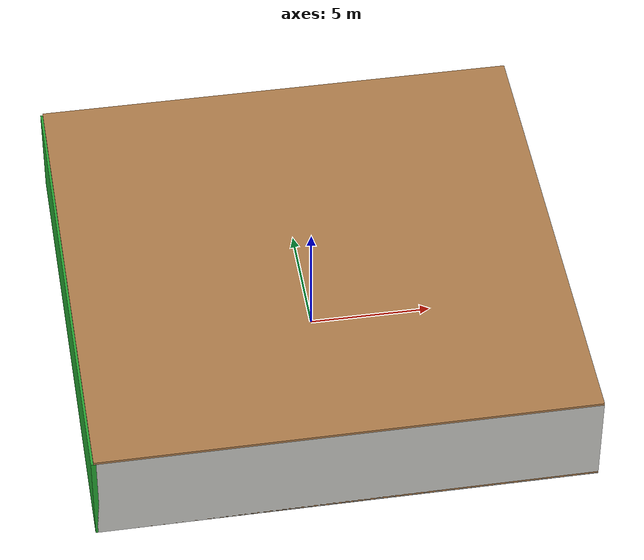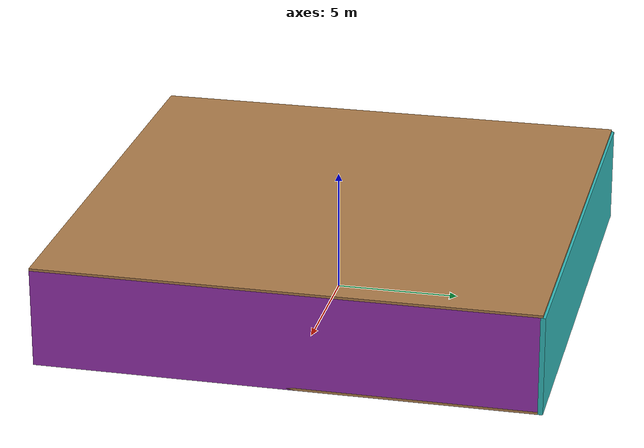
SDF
<sdf version="1.4">
 <world name="default">
  <physics type="ode">
   <max_step_size>0.001</max_step_size>
   <real_time_factor>1</real_time_factor>
   <real_time_update_rate>1000</real_time_update_rate>
   <gravity>0 0 -9.8</gravity>
  </physics>
  <scene><ambient>0.4 0.4 0.4 1</ambient><background>0.7 0.7 0.7 1</background><shadows>1</shadows></scene>
  <model name="Surrounding">
   <static>1</static>
   <link name="Ceiling">
    <collision name="Ceiling_Collision"><geometry><box><size>20 20 0.1</size></box></geometry></collision>
    <visual name="Ceiling_Visual">
     <geometry><box><size>20 20 0.1</size></box></geometry>
     <material>
      <script><uri>file://media/materials/scripts/gazebo.material</uri><name>Gazebo/WoodPallet</name></script>
     </material>
    </visual>
    <pose>0 0 4.05 0 0 0</pose>
   </link>
   <link name="Wall_South">
    <collision name="Wall_South_Collision">
     <geometry><box><size>20 0 4</size></box></geometry>
     <pose>0 0 2 0 -0 0</pose>
    </collision>
    <visual name="Wall_South_Visual">
     <pose>0 0 2 0 -0 0</pose>
     <geometry><box><size>20 0 4</size></box></geometry>
     <material>
      <script><uri>file://media/materials/scripts/gazebo.material</uri><name>Gazebo/CeilingTiled</name></script>
     </material>
    </visual>
    <velocity_decay><linear>0</linear><angular>0</angular></velocity_decay>
    <pose>0 -10 0 0 -0 0</pose>
   </link>
   <link name="Wall_East">
    <collision name="Wall_21_Collision">
     <geometry><box><size>20 0 4</size></box></geometry>
     <pose>0 0 2 0 -0 0</pose>
    </collision>
    <visual name="Wall_21_Visual">
     <pose>0 0 2 0 -0 0</pose>
     <geometry><box><size>20 0 4</size></box></geometry>
     <material>
      <script><uri>file://media/materials/scripts/gazebo.material</uri><name>Gazebo/Purple</name></script>
     </material>
    </visual>
    <velocity_decay><linear>0</linear><angular>0</angular></velocity_decay>
    <pose>10 0 0 0 -0 1.5708</pose>
   </link>
   <link name="Wall_North">
    <collision name="Wall_22_Collision">
     <geometry><box><size>20 0.2 4</size></box></geometry>
     <pose>0 0 2 0 -0 0</pose>
    </collision>
    <visual name="Wall_22_Visual">
     <pose>0 0 2 0 -0 0</pose>
     <geometry><box><size>20 0.2 4</size></box></geometry>
     <material>
      <script><uri>file://media/materials/scripts/gazebo.material</uri><name>Gazebo/Turquoise</name></script>
     </material>
    </visual>
    <velocity_decay><linear>0</linear><angular>0</angular></velocity_decay>
    <pose>0 10 0 0 -0 0</pose>
   </link>
   <link name="Wall_West">
    <collision name="Wall_23_Collision">
     <geometry><box><size>20 0.2 4</size></box></geometry>
     <pose>0 0 2 0 -0 0</pose>
    </collision>
    <visual name="Wall_23_Visual">
     <pose>0 0 2 0 -0 0</pose>
     <geometry><box><size>20 0.2 4</size></box></geometry>
     <material>
      <script><uri>file://media/materials/scripts/gazebo.material</uri><name>Gazebo/GreenGlow</name></script>
     </material>
    </visual>
    <velocity_decay><linear>0</linear><angular>0</angular></velocity_decay>
    <pose>-10 0 0 0 0 -1.5708</pose>
   </link>
   <link name="Ground_link">
    <collision name="collision">
     <pose>0 0 .05 0 -0 0</pose>
     <geometry><box><size>20 20 0.1</size></box></geometry>
    </collision>
    <visual name="visual">
     <pose>0 0 .05 0 -0 0</pose>
     <geometry><box><size>20 20 0.1</size></box></geometry>
     <material>
      <script><uri>file://media/materials/scripts/gazebo.material</uri><name>Gazebo/Wood</name></script>
     </material>
    </visual>
   </link>
   <static>1</static>
  </model>
  <spherical_coordinates>
   <surface_model>EARTH_WGS84</surface_model>
   <latitude_deg>0</latitude_deg>
   <longitude_deg>0</longitude_deg>
   <elevation>0</elevation>
   <heading_deg>0</heading_deg>
  </spherical_coordinates>
  <light name="lightball_0" type="diffuse">
   <diffuse>0.8 0.8 0.8 1</diffuse>
   <specular>0.2 0.2 0.2 1</specular>
   <attenuation>
    <range>100</range>
    <constant>0.7</constant>
    <linear>0.01</linear>
    <quadratic>0.001</quadratic>
   </attenuation>
   <direction>-0.5 0.1 -0.9</direction>
   <pose>3.47746677796 -3.85057887277 1.91420551123 0 0 0</pose>
  </light>
  <light name="lightball_1" type="diffuse">
   <diffuse>0.8 0.8 0.8 1</diffuse>
   <specular>0.2 0.2 0.2 1</specular>
   <attenuation>
    <range>100</range>
    <constant>0.7</constant>
    <linear>0.01</linear>
    <quadratic>0.001</quadratic>
   </attenuation>
   <direction>-0.5 0.1 -0.9</direction>
   <pose>-0.470579882801 -4.17967211195 2.65642549554 0 0 0</pose>
  </light>
  <light name="lightball_2" type="diffuse">
   <diffuse>0.8 0.8 0.8 1</diffuse>
   <specular>0.2 0.2 0.2 1</specular>
   <attenuation>
    <range>100</range>
    <constant>0.7</constant>
    <linear>0.01</linear>
    <quadratic>0.001</quadratic>
   </attenuation>
   <direction>-0.5 0.1 -0.9</direction>
   <pose>9.77367497976 1.49718519269 3.48219388108 0 0 0</pose>
  </light>
  <light name="lightball_3" type="diffuse">
   <diffuse>0.8 0.8 0.8 1</diffuse>
   <specular>0.2 0.2 0.2 1</specular>
   <attenuation>
    <range>100</range>
    <constant>0.7</constant>
    <linear>0.01</linear>
    <quadratic>0.001</quadratic>
   </attenuation>
   <direction>-0.5 0.1 -0.9</direction>
   <pose>3.02136297703 -1.50554179488 2.5651501509 0 0 0</pose>
  </light>
  <light name="lightball_4" type="diffuse">
   <diffuse>0.8 0.8 0.8 1</diffuse>
   <specular>0.2 0.2 0.2 1</specular>
   <attenuation>
    <range>100</range>
    <constant>0.7</constant>
    <linear>0.01</linear>
    <quadratic>0.001</quadratic>
   </attenuation>
   <direction>-0.5 0.1 -0.9</direction>
   <pose>9.52787610898 4.6204050231 1.34277083248 0 0 0</pose>
  </light>
  <light name="lightball_5" type="diffuse">
   <diffuse>0.8 0.8 0.8 1</diffuse>
   <specular>0.2 0.2 0.2 1</specular>
   <attenuation>
    <range>100</range>
    <constant>0.7</constant>
    <linear>0.01</linear>
    <quadratic>0.001</quadratic>
   </attenuation>
   <direction>-0.5 0.1 -0.9</direction>
   <pose>7.80304257094 9.46121643324 2.75846106842 0 0 0</pose>
  </light>
  <light name="lightball_6" type="diffuse">
   <diffuse>0.8 0.8 0.8 1</diffuse>
   <specular>0.2 0.2 0.2 1</specular>
   <attenuation>
    <range>100</range>
    <constant>0.7</constant>
    <linear>0.01</linear>
    <quadratic>0.001</quadratic>
   </attenuation>
   <direction>-0.5 0.1 -0.9</direction>
   <pose>-3.62003082823 -3.47010092727 1.32223647755 0 0 0</pose>
  </light>
  <light name="lightball_7" type="diffuse">
   <diffuse>0.8 0.8 0.8 1</diffuse>
   <specular>0.2 0.2 0.2 1</specular>
   <attenuation>
    <range>100</range>
    <constant>0.7</constant>
    <linear>0.01</linear>
    <quadratic>0.001</quadratic>
   </attenuation>
   <direction>-0.5 0.1 -0.9</direction>
   <pose>-2.80935828478 9.89166549795 3.66389282687 0 0 0</pose>
  </light>
  <light name="lightball_8" type="diffuse">
   <diffuse>0.8 0.8 0.8 1</diffuse>
   <specular>0.2 0.2 0.2 1</specular>
   <attenuation>
    <range>100</range>
    <constant>0.7</constant>
    <linear>0.01</linear>
    <quadratic>0.001</quadratic>
   </attenuation>
   <direction>-0.5 0.1 -0.9</direction>
   <pose>8.28553498048 -2.81823788499 1.0599769499 0 0 0</pose>
  </light>
  <light name="lightball_9" type="diffuse">
   <diffuse>0.8 0.8 0.8 1</diffuse>
   <specular>0.2 0.2 0.2 1</specular>
   <attenuation>
    <range>100</range>
    <constant>0.7</constant>
    <linear>0.01</linear>
    <quadratic>0.001</quadratic>
   </attenuation>
   <direction>-0.5 0.1 -0.9</direction>
   <pose>-3.78501447557 8.03179952462 2.56828128814 0 0 0</pose>
  </light>
  <light name="lightball_10" type="diffuse">
   <diffuse>0.8 0.8 0.8 1</diffuse>
   <specular>0.2 0.2 0.2 1</specular>
   <attenuation>
    <range>100</range>
    <constant>0.7</constant>
    <linear>0.01</linear>
    <quadratic>0.001</quadratic>
   </attenuation>
   <direction>-0.5 0.1 -0.9</direction>
   <pose>-9.86290541774 0.0316508226745 3.03243958586 0 0 0</pose>
  </light>
  <light name="lightball_11" type="diffuse">
   <diffuse>0.8 0.8 0.8 1</diffuse>
   <specular>0.2 0.2 0.2 1</specular>
   <attenuation>
    <range>100</range>
    <constant>0.7</constant>
    <linear>0.01</linear>
    <quadratic>0.001</quadratic>
   </attenuation>
   <direction>-0.5 0.1 -0.9</direction>
   <pose>-0.174208439291 6.23770483534 2.7858707798 0 0 0</pose>
  </light>
  <light name="lightball_12" type="diffuse">
   <diffuse>0.8 0.8 0.8 1</diffuse>
   <specular>0.2 0.2 0.2 1</specular>
   <attenuation>
    <range>100</range>
    <constant>0.7</constant>
    <linear>0.01</linear>
    <quadratic>0.001</quadratic>
   </attenuation>
   <direction>-0.5 0.1 -0.9</direction>
   <pose>6.22215241167 2.60999276703 3.56040286988 0 0 0</pose>
  </light>
  <include><uri>model://cabinet</uri><pose>-8.0066469461 6.81055517965 0 0 0 2.25049754544</pose></include>
  <include><uri>model://cabinet</uri><pose>1.18965573267 4.24465646856 0 0 0 0.109181701386</pose></include>
  <include><uri>model://cabinet</uri><pose>5.07813355834 4.12956669753 0 0 0 2.83884047847</pose></include>
  <include><uri>model://cabinet</uri><pose>7.66953101278 -8.09427473104 0 0 0 1.03105006775</pose></include>
 </world>
</sdf>

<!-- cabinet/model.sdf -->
<sdf version="1.5">
  <model name="cabinet">
    <static>true</static>
    <link name="cabinet_bottom_plate">
      <inertial>
        <pose>0 0 -1 0 0 0</pose>
        <inertia>
          <ixx>2.050000</ixx>
          <ixy>0</ixy>
          <ixz>0</ixz>
          <iyy>2.050000</iyy>
          <iyz>0</iyz>
          <izz>2.050000</izz>
        </inertia>
        <mass>25.000000</mass>
      </inertial>
      <collision name="cabinet_bottom_plate_geom">
        <pose>0 0 0.010000 0 0 0</pose>
        <geometry>
          <box>
            <size>0.450000 0.450000 0.020000</size>
          </box>
        </geometry>
      </collision>
      <visual name="cabinet_bottom_plate_geom_visual">
        <pose>0 0 0.010000 0 0 0</pose>
        <geometry>
          <box>
            <size>0.450000 0.450000 0.020000</size>
          </box>
        </geometry>
        <material>
          <script>
            <uri>model://media/materials/scripts/gazebo.material</uri>
            <name>Gazebo/Wood</name>
          </script>
        </material>
      </visual>
      <collision name="cabinet_bottom_plate_geom_cabinet_back_plate">
        <pose>0.235000 0 0.510000 0 0 0</pose>
        <geometry>
          <box>
            <size>0.020000 0.450000 1.020000</size>
          </box>
        </geometry>
      </collision>
      <visual name="cabinet_bottom_plate_geom_cabinet_back_plate_visual">
        <pose>0.235000 0 0.510000 0 0 0</pose>
        <geometry>
          <box>
            <size>0.020000 0.450000 1.020000</size>
          </box>
        </geometry>
        <material>
          <script>
            <uri>model://media/materials/scripts/gazebo.material</uri>
            <name>Gazebo/Wood</name>
          </script>
        </material>
      </visual>
      <collision name="cabinet_bottom_plate_geom_cabinet_left_plate">
        <pose>0 0.235000 0.510000 0 0 0</pose>
        <geometry>
          <box>
            <size>0.450000 0.020000 1.020000</size>
          </box>
        </geometry>
      </collision>
      <visual name="cabinet_bottom_plate_geom_cabinet_left_plate_visual">
        <pose>0 0.235000 0.510000 0 0 0</pose>
        <geometry>
          <box>
            <size>0.450000 0.020000 1.020000</size>
          </box>
        </geometry>
        <material>
          <script>
            <uri>model://media/materials/scripts/gazebo.material</uri>
            <name>Gazebo/Wood</name>
          </script>
        </material>
      </visual>
      <collision name="cabinet_bottom_plate_geom_cabinet_middle_plate">
        <pose>0 0 0.510000 0 0 0</pose>
        <geometry>
          <box>
            <size>0.450000 0.450000 0.020000</size>
          </box>
        </geometry>
      </collision>
      <visual name="cabinet_bottom_plate_geom_cabinet_middle_plate_visual">
        <pose>0 0 0.510000 0 0 0</pose>
        <geometry>
          <box>
            <size>0.450000 0.450000 0.020000</size>
          </box>
        </geometry>
        <material>
          <script>
            <uri>model://media/materials/scripts/gazebo.material</uri>
            <name>Gazebo/Wood</name>
          </script>
        </material>
      </visual>
      <collision name="cabinet_bottom_plate_geom_cabinet_right_plate">
        <pose>0 -0.235000 0.510000 0 0 0</pose>
        <geometry>
          <box>
            <size>0.450000 0.020000 1.020000</size>
          </box>
        </geometry>
      </collision>
      <visual name="cabinet_bottom_plate_geom_cabinet_right_plate_visual">
        <pose>0 -0.235000 0.510000 0 0 0</pose>
        <geometry>
          <box>
            <size>0.450000 0.020000 1.020000</size>
          </box>
        </geometry>
        <material>
          <script>
            <uri>model://media/materials/scripts/gazebo.material</uri>
            <name>Gazebo/Wood</name>
          </script>
        </material>
      </visual>
      <collision name="cabinet_bottom_plate_geom_cabinet_top_plate">
        <pose>0 0 1.010000 0 0 0</pose>
        <geometry>
          <box>
            <size>0.450000 0.450000 0.020000</size>
          </box>
        </geometry>
      </collision>
      <visual name="cabinet_bottom_plate_geom_cabinet_top_plate_visual">
        <pose>0 0 1.010000 0 0 0</pose>
        <geometry>
          <box>
            <size>0.450000 0.450000 0.020000</size>
          </box>
        </geometry>
        <material>
          <script>
            <uri>model://media/materials/scripts/gazebo.material</uri>
            <name>Gazebo/Wood</name>
          </script>
        </material>
      </visual>
    </link>
  </model>
</sdf>
